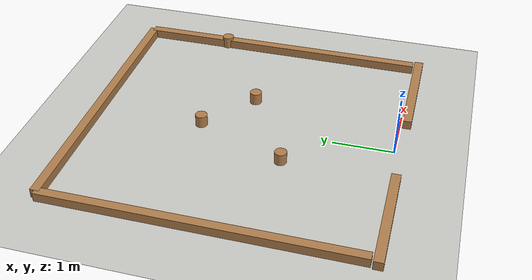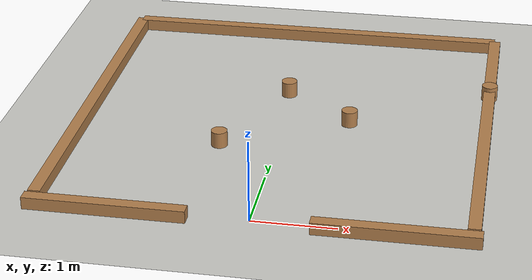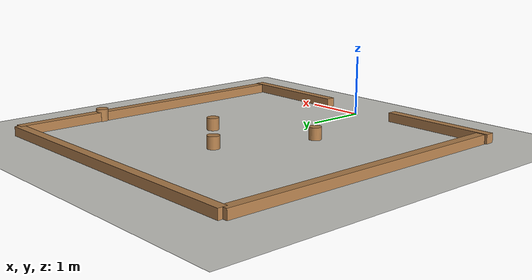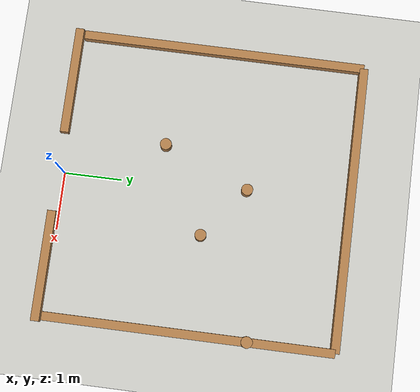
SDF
<sdf version="1.4">
 <world name="default">
  <scene>
   <grid>1</grid>
   <ambient>0.4 0.4 0.4 1</ambient>
   <background>0.7 0.7 0.7 1</background>
   <shadows>1</shadows>
  </scene>
  <model name="ground_plane">
   <static>1</static>
   <link name="link">
    <collision name="collision">
     <geometry><plane><normal>0 0 1</normal><size>20 20</size></plane></geometry>
     <surface><friction><ode><mu>100</mu><mu2>50</mu2></ode></friction></surface>
    </collision>
    <visual name="visual">
     <cast_shadows>0</cast_shadows>
     <geometry><plane><normal>0 0 1</normal><size>20 20</size></plane></geometry>
     <material>
      <script><uri>file://media/materials/scripts/gazebo.material</uri><name>Gazebo/CeilingTiled</name></script>
     </material>
    </visual>
    <velocity_decay><linear>0</linear><angular>0</angular></velocity_decay>
   </link>
  </model>
  <light name="sun" type="directional">
   <pose>0 0 10 0 -0 0</pose>
   <diffuse>0.8 0.8 0.8 1</diffuse>
   <specular>0.2 0.2 0.2 1</specular>
   <attenuation>
    <range>1000</range>
    <constant>0.9</constant>
    <linear>0.01</linear>
    <quadratic>0.001</quadratic>
   </attenuation>
   <direction>-0.5 0.1 -0.9</direction>
  </light>
  <light name="user_directional_light_0" type="directional">
   <pose>4.2709 -2.45727 10 0 -0 0</pose>
   <diffuse>0.5 0.5 0.5 1</diffuse>
   <specular>0.1 0.1 0.1 1</specular>
   <direction>0.1 0.1 -0.9</direction>
   <attenuation>
    <range>20</range>
    <constant>0.5</constant>
    <linear>0.01</linear>
    <quadratic>0.001</quadratic>
   </attenuation>
  </light>
  <light name="user_directional_light_1" type="directional">
   <pose>-6.29685 -2.72231 10 0 -0 0</pose>
   <diffuse>0.5 0.5 0.5 1</diffuse>
   <specular>0.1 0.1 0.1 1</specular>
   <direction>0.1 0.1 -0.9</direction>
   <attenuation>
    <range>20</range>
    <constant>0.5</constant>
    <linear>0.01</linear>
    <quadratic>0.001</quadratic>
   </attenuation>
  </light>
  <light name="user_directional_light_2" type="directional">
   <pose>4.46829 4.80995 10 0 -0 0</pose>
   <diffuse>0.5 0.5 0.5 1</diffuse>
   <specular>0.1 0.1 0.1 1</specular>
   <direction>0.1 0.1 -0.9</direction>
   <attenuation>
    <range>20</range>
    <constant>0.5</constant>
    <linear>0.01</linear>
    <quadratic>0.001</quadratic>
   </attenuation>
  </light>
  <light name="user_directional_light_3" type="directional">
   <pose>-6.2627 4.68229 10 0 -0 0</pose>
   <diffuse>0.5 0.5 0.5 1</diffuse>
   <specular>0.1 0.1 0.1 1</specular>
   <direction>0.1 0.1 -0.9</direction>
   <attenuation>
    <range>20</range>
    <constant>0.5</constant>
    <linear>0.01</linear>
    <quadratic>0.001</quadratic>
   </attenuation>
  </light>
  <light name="user_directional_light_4" type="directional">
   <pose>-0.130967 0.391098 10 0 -0 0</pose>
   <diffuse>0.5 0.5 0.5 1</diffuse>
   <specular>0.1 0.1 0.1 1</specular>
   <direction>0.1 0.1 -0.9</direction>
   <attenuation>
    <range>20</range>
    <constant>0.5</constant>
    <linear>0.01</linear>
    <quadratic>0.001</quadratic>
   </attenuation>
  </light>
  <physics type="ode">
   <max_step_size>0.001</max_step_size>
   <real_time_factor>1</real_time_factor>
   <real_time_update_rate>1000</real_time_update_rate>
   <gravity>0 0 -9.8</gravity>
  </physics>
  <spherical_coordinates>
   <surface_model>EARTH_WGS84</surface_model>
   <latitude_deg>0</latitude_deg>
   <longitude_deg>0</longitude_deg>
   <elevation>0</elevation>
   <heading_deg>0</heading_deg>
  </spherical_coordinates>
  <model name="wall_2">
   <pose>2.5 2.5 0.075 0 0 1.57</pose>
   <link name="link">
    <inertial>
     <mass>1</mass>
     <inertia><ixx>1</ixx><ixy>0</ixy><ixz>0</ixz><iyy>1</iyy><iyz>0</iyz><izz>1</izz></inertia>
    </inertial>
    <collision name="collision"><geometry><box><size>4.8 0.15 0.15</size></box></geometry></collision>
    <visual name="visual">
     <geometry><box><size>5 0.15 0.15</size></box></geometry>
     <material>
      <script><uri>file://media/materials/scripts/gazebo.material</uri><name>Gazebo/WoodFloor</name></script>
     </material>
    </visual>
    <velocity_decay><linear>0</linear><angular>0</angular></velocity_decay>
   </link>
   <static>0</static>
  </model>
  <model name="wall_4">
   <pose>0 5 0.075 -9e-06 3e-06 -0.000156</pose>
   <link name="link">
    <inertial>
     <mass>1</mass>
     <inertia><ixx>1</ixx><ixy>0</ixy><ixz>0</ixz><iyy>1</iyy><iyz>0</iyz><izz>1</izz></inertia>
    </inertial>
    <collision name="collision"><geometry><box><size>5 0.15 0.15</size></box></geometry></collision>
    <visual name="visual">
     <geometry><box><size>5 0.15 0.15</size></box></geometry>
     <material>
      <script><uri>file://media/materials/scripts/gazebo.material</uri><name>Gazebo/WoodFloor</name></script>
     </material>
    </visual>
    <velocity_decay><linear>0</linear><angular>0</angular></velocity_decay>
   </link>
   <static>0</static>
  </model>
  <model name="wall_3">
   <pose>-2.5 2.5 0.075 0 0 1.57</pose>
   <link name="link">
    <inertial>
     <mass>1</mass>
     <inertia><ixx>1</ixx><ixy>0</ixy><ixz>0</ixz><iyy>1</iyy><iyz>0</iyz><izz>1</izz></inertia>
    </inertial>
    <collision name="collision"><geometry><box><size>4.8 0.15 0.15</size></box></geometry></collision>
    <visual name="visual">
     <geometry><box><size>5 0.15 0.15</size></box></geometry>
     <material>
      <script><uri>file://media/materials/scripts/gazebo.material</uri><name>Gazebo/WoodFloor</name></script>
     </material>
    </visual>
    <velocity_decay><linear>0</linear><angular>0</angular></velocity_decay>
   </link>
   <static>0</static>
  </model>
  <model name="pillar_0">
   <pose>-0.7 1.7 0.1 0 0 0</pose>
   <link name="link">
    <inertial>
     <mass>1</mass>
     <inertia><ixx>1</ixx><ixy>0</ixy><ixz>0</ixz><iyy>1</iyy><iyz>0</iyz><izz>1</izz></inertia>
    </inertial>
    <collision name="collision">
     <geometry><cylinder><radius>0.1</radius><length>0.2</length></cylinder></geometry>
    </collision>
    <visual name="visual">
     <geometry><cylinder><radius>0.1</radius><length>0.2</length></cylinder></geometry>
     <material>
      <script><uri>file://media/materials/scripts/gazebo.material</uri><name>Gazebo/WoodFloor</name></script>
     </material>
    </visual>
    <velocity_decay><linear>0</linear><angular>0</angular></velocity_decay>
   </link>
   <static>0</static>
  </model>
  <model name="pillar_1">
   <pose>-0.08 3.2 0.1 0 0 0</pose>
   <link name="link">
    <inertial>
     <mass>1</mass>
     <inertia><ixx>1</ixx><ixy>0</ixy><ixz>0</ixz><iyy>1</iyy><iyz>0</iyz><izz>1</izz></inertia>
    </inertial>
    <collision name="collision">
     <geometry><cylinder><radius>0.1</radius><length>0.2</length></cylinder></geometry>
    </collision>
    <visual name="visual">
     <geometry><cylinder><radius>0.1</radius><length>0.2</length></cylinder></geometry>
     <material>
      <script><uri>file://media/materials/scripts/gazebo.material</uri><name>Gazebo/WoodFloor</name></script>
     </material>
    </visual>
    <velocity_decay><linear>0</linear><angular>0</angular></velocity_decay>
   </link>
   <static>0</static>
  </model>
  <model name="pillar_2">
   <pose>0.8 2.5 0.1 0 0 0</pose>
   <link name="link">
    <inertial>
     <mass>1</mass>
     <inertia><ixx>1</ixx><ixy>0</ixy><ixz>0</ixz><iyy>1</iyy><iyz>0</iyz><izz>1</izz></inertia>
    </inertial>
    <collision name="collision">
     <geometry><cylinder><radius>0.1</radius><length>0.2</length></cylinder></geometry>
    </collision>
    <visual name="visual">
     <geometry><cylinder><radius>0.1</radius><length>0.2</length></cylinder></geometry>
     <material>
      <script><uri>file://media/materials/scripts/gazebo.material</uri><name>Gazebo/WoodFloor</name></script>
     </material>
    </visual>
    <velocity_decay><linear>0</linear><angular>0</angular></velocity_decay>
   </link>
   <static>0</static>
  </model>
  <model name="pillar_3">
   <pose>2.5 3.5 0.1 0 0 0</pose>
   <link name="link">
    <inertial>
     <mass>1</mass>
     <inertia><ixx>1</ixx><ixy>0</ixy><ixz>0</ixz><iyy>1</iyy><iyz>0</iyz><izz>1</izz></inertia>
    </inertial>
    <collision name="collision">
     <geometry><cylinder><radius>0.1</radius><length>0.2</length></cylinder></geometry>
    </collision>
    <visual name="visual">
     <geometry><cylinder><radius>0.1</radius><length>0.2</length></cylinder></geometry>
     <material>
      <script><uri>file://media/materials/scripts/gazebo.material</uri><name>Gazebo/WoodFloor</name></script>
     </material>
    </visual>
    <velocity_decay><linear>0</linear><angular>0</angular></velocity_decay>
   </link>
   <static>0</static>
  </model>
  <model name="wall_0">
   <pose>-1.65 -0.1 0.075 0 0 0</pose>
   <link name="link">
    <inertial>
     <mass>1</mass>
     <inertia><ixx>1</ixx><ixy>0</ixy><ixz>0</ixz><iyy>1</iyy><iyz>0</iyz><izz>1</izz></inertia>
    </inertial>
    <collision name="collision"><geometry><box><size>1.9 0.15 0.15</size></box></geometry></collision>
    <visual name="visual">
     <geometry><box><size>1.9 0.15 0.15</size></box></geometry>
     <material>
      <script><uri>file://media/materials/scripts/gazebo.material</uri><name>Gazebo/WoodFloor</name></script>
     </material>
    </visual>
    <velocity_decay><linear>0</linear><angular>0</angular></velocity_decay>
   </link>
   <static>0</static>
  </model>
  <model name="wall_1">
   <pose>1.65 -0.1 0.075 0.5 0 0 0</pose>
   <link name="link">
    <inertial>
     <mass>1</mass>
     <inertia><ixx>1</ixx><ixy>0</ixy><ixz>0</ixz><iyy>1</iyy><iyz>0</iyz><izz>1</izz></inertia>
    </inertial>
    <collision name="collision"><geometry><box><size>1.9 0.15 0.15</size></box></geometry></collision>
    <visual name="visual">
     <geometry><box><size>1.9 0.15 0.15</size></box></geometry>
     <material>
      <script>
       <uri>file:///home/youbot/ws/src/arcl_youbot/luh_youbot_gazebo/worlds/materials/scripts/gazebo.material</uri>
       <name>Gazebo/WoodFloor</name>
      </script>
     </material>
    </visual>
    <velocity_decay><linear>0</linear><angular>0</angular></velocity_decay>
   </link>
   <static>0</static>
  </model>
 </world>
</sdf>
